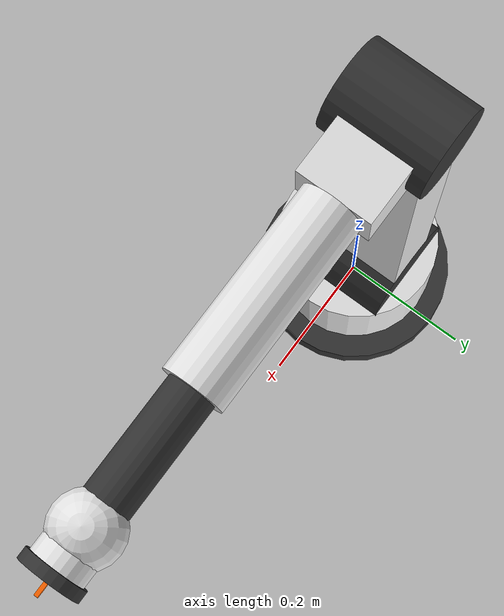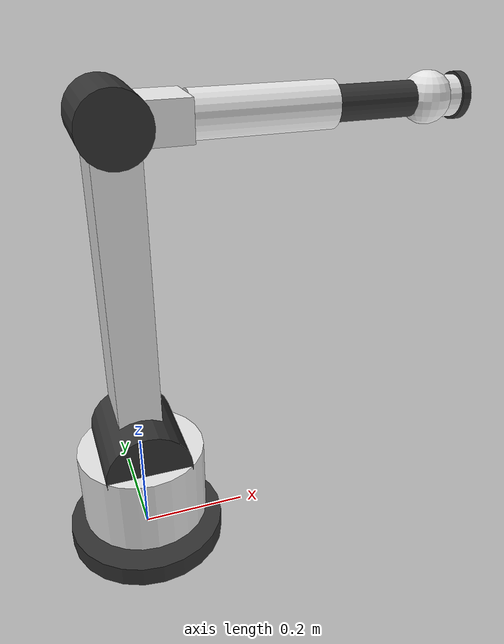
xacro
<?xml version="1.0"?>
<robot name="industrial_robot" xmlns:xacro="http://www.ros.org/wiki/xacro">

  <!-- Materials -->
  <material name="industrial_white">
    <color rgba="0.9 0.9 0.9 1.0"/>
  </material>
  <material name="dark_gray">
    <color rgba="0.2 0.2 0.2 1.0"/>
  </material>
  <material name="brand_orange">
    <color rgba="1.0 0.4 0.0 1.0"/>
  </material>

  <link name="base_link">
    <inertial>
      <mass value="5.0"/>
      <origin xyz="0 0 0.02" rpy="0 0 0"/>
      <inertia ixx="0.01" ixy="0" ixz="0" iyy="0.01" iyz="0" izz="0.01"/>
    </inertial>
    <visual>
      <geometry>
        <cylinder radius="0.15" length="0.04"/>
      </geometry>
      <material name="dark_gray"/>
    </visual>
    <collision>
      <geometry>
        <cylinder radius="0.15" length="0.04"/>
      </geometry>
    </collision>
  </link>

  <!-- Axis 1: Base Rotation -->
  <joint name="j1" type="revolute">
    <origin xyz="0 0 0.04" rpy="0 0 0"/>
    <parent link="base_link"/>
    <child link="link_1"/>
    <axis xyz="0 0 1"/>
    <limit lower="-3.14" upper="3.14" effort="100" velocity="1.0"/>
  </joint>

  <link name="link_1">
    <inertial>
      <mass value="4.0"/>
      <origin xyz="0 0 0.075" rpy="0 0 0"/>
      <inertia ixx="0.01" ixy="0" ixz="0" iyy="0.01" iyz="0" izz="0.01"/>
    </inertial>
    <visual>
      <geometry>
        <cylinder radius="0.12" length="0.15"/>
      </geometry>
      <origin xyz="0 0 0.075" rpy="0 0 0"/>
      <material name="industrial_white"/>
    </visual>
    <visual>
      <geometry>
        <cylinder radius="0.08" length="0.18"/>
      </geometry>
      <origin xyz="0 0 0.15" rpy="1.5707 0 0"/>
      <material name="dark_gray"/>
    </visual>
  </link>

  <!-- Axis 2: Shoulder -->
  <joint name="j2" type="revolute">
    <origin xyz="0 0.03 0.15" rpy="0 0 0"/>
    <parent link="link_1"/>
    <child link="link_2"/>
    <axis xyz="0 1 0"/>
    <limit lower="-1.5707" upper="1.5707" effort="100" velocity="1.0"/>
  </joint>

  <link name="link_2">
    <inertial>
      <mass value="3.0"/>
      <origin xyz="0 0 0.3" rpy="0 0 0"/>
      <inertia ixx="0.01" ixy="0" ixz="0" iyy="0.01" iyz="0" izz="0.01"/>
    </inertial>
    <visual>
      <geometry>
        <box size="0.08 0.12 0.6"/>
      </geometry>
      <origin xyz="0 0 0.3" rpy="0 0 0"/>
      <material name="industrial_white"/>
    </visual>
    <visual>
      <geometry>
        <cylinder radius="0.06" length="0.14"/>
      </geometry>
      <origin xyz="0 0 0.6" rpy="1.5707 0 0"/>
      <material name="dark_gray"/>
    </visual>
  </link>

  <!-- Axis 3: Elbow -->
  <joint name="j3" type="revolute">
    <origin xyz="0 0 0.6" rpy="0 0 0"/>
    <parent link="link_2"/>
    <child link="link_3"/>
    <axis xyz="0 1 0"/>
    <limit lower="-1.5707" upper="1.5707" effort="100" velocity="1.0"/>
  </joint>

  <link name="link_3">
    <inertial>
      <mass value="2.0"/>
      <origin xyz="0.15 0 0" rpy="0 0 0"/>
      <inertia ixx="0.01" ixy="0" ixz="0" iyy="0.01" iyz="0" izz="0.01"/>
    </inertial>
    <visual>
      <geometry>
        <box size="0.07 0.1 0.15"/>
      </geometry>
      <origin xyz="0.05 0 0" rpy="0 1.5707 0"/>
      <material name="industrial_white"/>
    </visual>
    <visual>
      <geometry>
        <cylinder radius="0.04" length="0.25"/>
      </geometry>
      <origin xyz="0.25 0 0" rpy="0 1.5707 0"/>
      <material name="industrial_white"/>
    </visual>
  </link>

  <!-- Axis 4: Wrist Roll -->
  <joint name="j4" type="revolute">
    <origin xyz="0.375 0 0" rpy="0 0 0"/>
    <parent link="link_3"/>
    <child link="link_4"/>
    <axis xyz="1 0 0"/>
    <limit lower="-6.28" upper="6.28" effort="50" velocity="1.5"/>
  </joint>

  <link name="link_4">
    <inertial>
      <mass value="1.0"/>
      <origin xyz="0.1 0 0" rpy="0 0 0"/>
      <inertia ixx="0.001" ixy="0" ixz="0" iyy="0.001" iyz="0" izz="0.001"/>
    </inertial>
    <visual>
      <geometry>
        <cylinder radius="0.03" length="0.2"/>
      </geometry>
      <origin xyz="0.1 0 0" rpy="0 1.5707 0"/>
      <material name="dark_gray"/>
    </visual>
  </link>

  <!-- Axis 5: Wrist Pitch -->
  <joint name="j5" type="revolute">
    <origin xyz="0.18 0 0" rpy="0 0 0"/>
    <parent link="link_4"/>
    <child link="link_5"/>
    <axis xyz="0 1 0"/>
    <limit lower="-1.5707" upper="1.5707" effort="50" velocity="1.5"/>
  </joint>

  <link name="link_5">
    <inertial>
      <mass value="0.5"/>
      <origin xyz="0 0 0" rpy="0 0 0"/>
      <inertia ixx="0.001" ixy="0" ixz="0" iyy="0.001" iyz="0" izz="0.001"/>
    </inertial>
    <visual>
      <geometry>
        <sphere radius="0.045"/>
      </geometry>
      <material name="industrial_white"/>
    </visual>
    <visual>
      <geometry>
        <cylinder radius="0.035" length="0.06"/>
      </geometry>
      <origin xyz="0.03 0 0" rpy="0 1.5707 0"/>
      <material name="industrial_white"/>
    </visual>
  </link>

  <!-- Axis 6: Wrist Roll -->
  <joint name="j6" type="revolute">
    <origin xyz="0.05 0 0" rpy="0 0 0"/>
    <parent link="link_5"/>
    <child link="link_6"/>
    <axis xyz="1 0 0"/>
    <limit lower="-6.28" upper="6.28" effort="50" velocity="2.0"/>
  </joint>

  <link name="link_6">
    <inertial>
      <mass value="0.2"/>
      <origin xyz="0.01 0 0" rpy="0 0 0"/>
      <inertia ixx="0.001" ixy="0" ixz="0" iyy="0.001" iyz="0" izz="0.001"/>
    </inertial>
    <visual>
      <geometry>
        <cylinder radius="0.04" length="0.015"/>
      </geometry>
      <origin xyz="0.0075 0 0" rpy="0 1.5707 0"/>
      <material name="dark_gray"/>
    </visual>
    <visual>
      <geometry>
        <box size="0.03 0.005 0.005"/>
      </geometry>
      <origin xyz="0.02 0 0" rpy="0 0 0"/>
      <material name="brand_orange"/>
    </visual>
  </link>

</robot>
